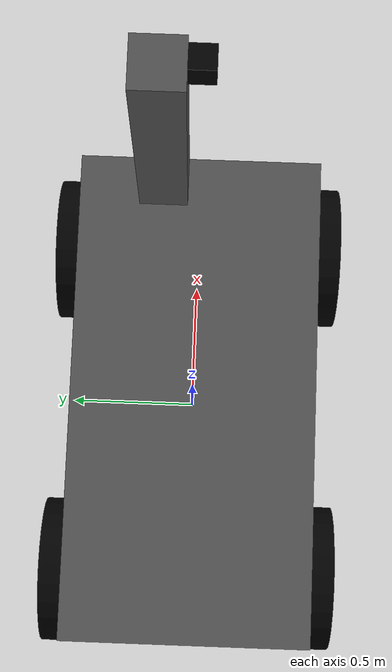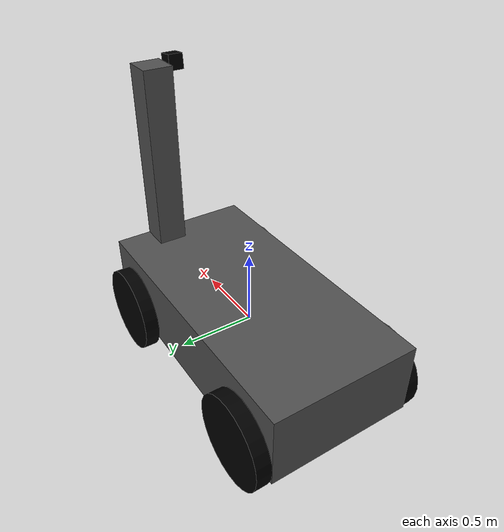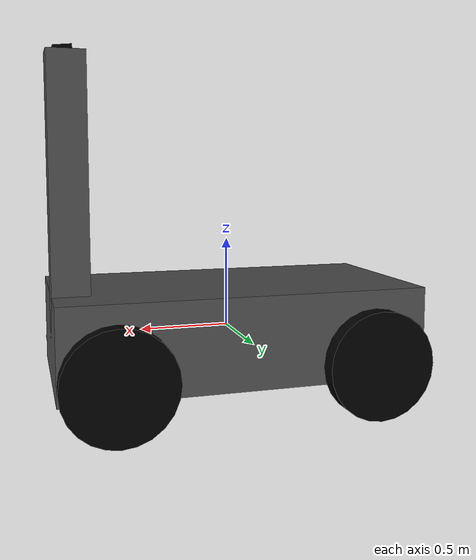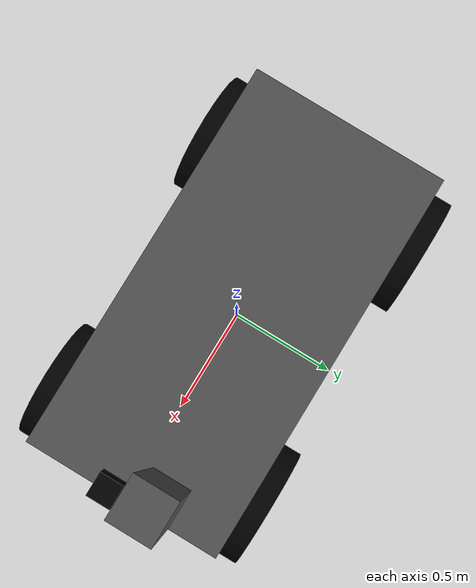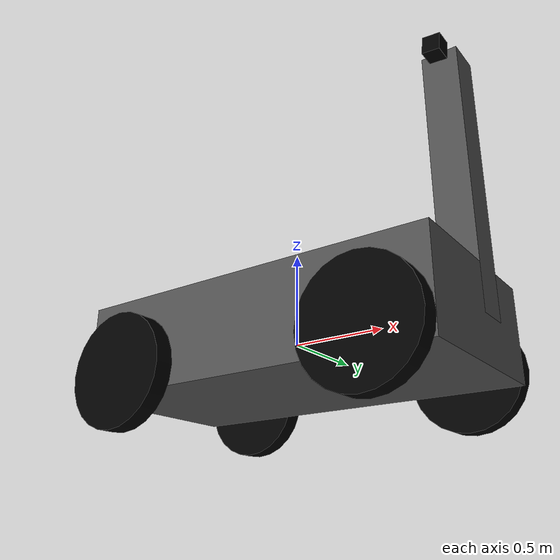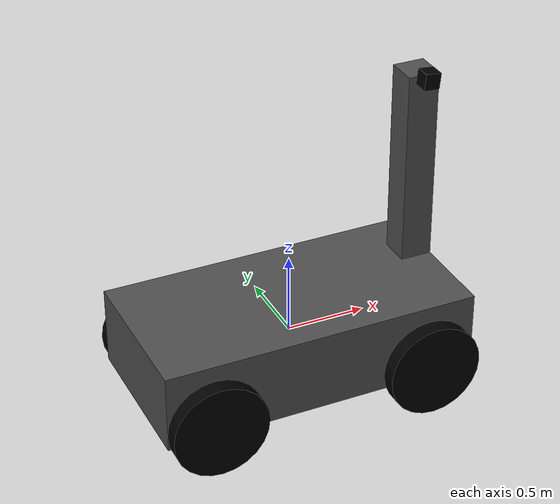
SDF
<sdf version='1.11'>
  <model name='ackermann_steering_vehicle'>
    <link name='body_link'>
      <inertial>
        <pose>1.7999999640000012e-08 1.4999999700000019e-09 2.2499999550000009e-08 0 0 0</pose>
        <mass>1000.0000199999999</mass>
        <inertia>
          <ixx>104.16669701666611</ixx>
          <ixy>-1.3499999730000011e-06</ixy>
          <ixz>-2.024999959500001e-05</ixz>
          <iyy>354.1667129916658</iyy>
          <iyz>-1.124999966250001e-06</iyz>
          <izz>416.6666850916663</izz>
        </inertia>
      </inertial>
      <collision name='body_link_collision'>
        <pose>0 0 0 0 0 0</pose>
        <geometry>
          <box>
            <size>2 1 0.5</size>
          </box>
        </geometry>
        <surface>
          <contact>
            <ode/>
          </contact>
          <friction>
            <ode>
              <mu>0.0001</mu>
              <mu2>0.0001</mu2>
            </ode>
          </friction>
        </surface>
      </collision>
      <collision name='body_link_fixed_joint_lump__camera_stick_link_collision_1'>
        <pose>0.90000000000000002 0.14999999999999999 0.75 0 0 0</pose>
        <geometry>
          <box>
            <size>0.20000000000000001 0.20000000000000001 1.5</size>
          </box>
        </geometry>
      </collision>
      <collision name='body_link_fixed_joint_lump__camera_link_collision_2'>
        <pose>0.90000000000000002 0 1.5 0 0.10000000000000001 0</pose>
        <geometry>
          <box>
            <size>0.10000000000000001 0.10000000000000001 0.10000000000000001</size>
          </box>
        </geometry>
      </collision>
      <visual name='body_link_visual'>
        <pose>0 0 0 0 0 0</pose>
        <geometry>
          <box>
            <size>2 1 0.5</size>
          </box>
        </geometry>
        <material>
          <diffuse>0.3125 0.3125 0.3125 1</diffuse>
          <ambient>0.3125 0.3125 0.3125 1</ambient>
        </material>
      </visual>
      <visual name='body_link_fixed_joint_lump__camera_stick_link_visual_1'>
        <pose>0.90000000000000002 0.14999999999999999 0.75 0 0 0</pose>
        <geometry>
          <box>
            <size>0.20000000000000001 0.20000000000000001 1.5</size>
          </box>
        </geometry>
        <material>
          <diffuse>0.3125 0.3125 0.3125 1</diffuse>
          <ambient>0.3125 0.3125 0.3125 1</ambient>
        </material>
      </visual>
      <visual name='body_link_fixed_joint_lump__camera_link_visual_2'>
        <pose>0.90000000000000002 0 1.5 0 0.10000000000000001 0</pose>
        <geometry>
          <box>
            <size>0.10000000000000001 0.10000000000000001 0.10000000000000001</size>
          </box>
        </geometry>
        <material>
          <diffuse>0 0 0 1</diffuse>
          <ambient>0 0 0 1</ambient>
        </material>
      </visual>
    </link>
    <joint name='front_left_steering_joint' type='revolute'>
      <pose relative_to='body_link'>0.69999999999999996 0.55000000000000004 -0.14999999999999999 0 0 0</pose>
      <parent>body_link</parent>
      <child>front_left_steering_link</child>
      <axis>
        <xyz>0 0 1</xyz>
        <limit>
          <lower>-0.61080000000000001</lower>
          <upper>0.61080000000000001</upper>
          <effort>1</effort>
          <velocity>1.5707960000000001</velocity>
        </limit>
        <dynamics>
          <damping>0.10000000000000001</damping>
          <friction>0.10000000000000001</friction>
          <spring_reference>0</spring_reference>
          <spring_stiffness>0</spring_stiffness>
        </dynamics>
      </axis>
    </joint>
    <link name='front_left_steering_link'>
      <pose relative_to='front_left_steering_joint'>0 0 0 0 0 0</pose>
      <inertial>
        <pose>0 0 0 1.5707949999999999 0 0</pose>
        <mass>0.01</mass>
        <inertia>
          <ixx>0</ixx>
          <ixy>0</ixy>
          <ixz>0</ixz>
          <iyy>0</iyy>
          <iyz>0</iyz>
          <izz>0</izz>
        </inertia>
      </inertial>
      <collision name='front_left_steering_link_collision'>
        <pose>0 0 0 1.5707949999999999 0 0</pose>
        <geometry>
          <cylinder>
            <length>0.001</length>
            <radius>0.01</radius>
          </cylinder>
        </geometry>
      </collision>
      <visual name='front_left_steering_link_visual'>
        <pose>0 0 0 1.5707949999999999 0 0</pose>
        <geometry>
          <cylinder>
            <length>0.001</length>
            <radius>0.01</radius>
          </cylinder>
        </geometry>
        <material>
          <diffuse>0 0 0 1</diffuse>
          <ambient>0 0 0 1</ambient>
        </material>
      </visual>
    </link>
    <joint name='front_left_wheel_joint' type='revolute'>
      <pose relative_to='front_left_steering_link'>0 0 0 0 0 0</pose>
      <parent>front_left_steering_link</parent>
      <child>front_left_wheel_link</child>
      <axis>
        <xyz>0 1 0</xyz>
        <limit>
          <effort>10</effort>
          <velocity>3.333333333333333</velocity>
          <lower>-inf</lower>
          <upper>inf</upper>
        </limit>
        <dynamics>
          <damping>0.10000000000000001</damping>
          <friction>0.10000000000000001</friction>
          <spring_reference>0</spring_reference>
          <spring_stiffness>0</spring_stiffness>
        </dynamics>
      </axis>
    </joint>
    <link name='front_left_wheel_link'>
      <pose relative_to='front_left_wheel_joint'>0 0 0 0 0 0</pose>
      <inertial>
        <pose>0 0 0 1.5707949999999999 0 0</pose>
        <mass>28.274333850000001</mass>
        <inertia>
          <ixx>0.65973445649999984</ixx>
          <ixy>0</ixy>
          <ixz>0</ixz>
          <iyy>0.65973445649999984</iyy>
          <iyz>0</iyz>
          <izz>1.27234502325</izz>
        </inertia>
      </inertial>
      <collision name='front_left_wheel_link_collision'>
        <pose>0 0 0 1.5707949999999999 0 0</pose>
        <geometry>
          <cylinder>
            <length>0.10000000000000001</length>
            <radius>0.29999999999999999</radius>
          </cylinder>
        </geometry>
        <surface>
          <contact>
            <ode/>
          </contact>
          <friction>
            <ode>
              <mu>100</mu>
              <mu2>100</mu2>
            </ode>
          </friction>
        </surface>
      </collision>
      <visual name='front_left_wheel_link_visual'>
        <pose>0 0 0 1.5707949999999999 0 0</pose>
        <geometry>
          <cylinder>
            <length>0.10000000000000001</length>
            <radius>0.29999999999999999</radius>
          </cylinder>
        </geometry>
        <material>
          <diffuse>0 0 0 1</diffuse>
          <ambient>0 0 0 1</ambient>
        </material>
      </visual>
    </link>
    <joint name='front_right_steering_joint' type='revolute'>
      <pose relative_to='body_link'>0.69999999999999996 -0.55000000000000004 -0.14999999999999999 0 0 0</pose>
      <parent>body_link</parent>
      <child>front_right_steering_link</child>
      <axis>
        <xyz>0 0 1</xyz>
        <limit>
          <lower>-0.61080000000000001</lower>
          <upper>0.61080000000000001</upper>
          <effort>1</effort>
          <velocity>1.5707960000000001</velocity>
        </limit>
        <dynamics>
          <damping>0.10000000000000001</damping>
          <friction>0.10000000000000001</friction>
          <spring_reference>0</spring_reference>
          <spring_stiffness>0</spring_stiffness>
        </dynamics>
      </axis>
    </joint>
    <link name='front_right_steering_link'>
      <pose relative_to='front_right_steering_joint'>0 0 0 0 0 0</pose>
      <inertial>
        <pose>0 0 0 1.5707949999999999 0 0</pose>
        <mass>0.01</mass>
        <inertia>
          <ixx>0</ixx>
          <ixy>0</ixy>
          <ixz>0</ixz>
          <iyy>0</iyy>
          <iyz>0</iyz>
          <izz>0</izz>
        </inertia>
      </inertial>
      <collision name='front_right_steering_link_collision'>
        <pose>0 0 0 1.5707949999999999 0 0</pose>
        <geometry>
          <cylinder>
            <length>0.001</length>
            <radius>0.01</radius>
          </cylinder>
        </geometry>
      </collision>
      <visual name='front_right_steering_link_visual'>
        <pose>0 0 0 1.5707949999999999 0 0</pose>
        <geometry>
          <cylinder>
            <length>0.001</length>
            <radius>0.01</radius>
          </cylinder>
        </geometry>
        <material>
          <diffuse>0 0 0 1</diffuse>
          <ambient>0 0 0 1</ambient>
        </material>
      </visual>
    </link>
    <joint name='front_right_wheel_joint' type='revolute'>
      <pose relative_to='front_right_steering_link'>0 0 0 0 0 0</pose>
      <parent>front_right_steering_link</parent>
      <child>front_right_wheel_link</child>
      <axis>
        <xyz>0 1 0</xyz>
        <limit>
          <effort>10</effort>
          <velocity>3.333333333333333</velocity>
          <lower>-inf</lower>
          <upper>inf</upper>
        </limit>
        <dynamics>
          <damping>0.10000000000000001</damping>
          <friction>0.10000000000000001</friction>
          <spring_reference>0</spring_reference>
          <spring_stiffness>0</spring_stiffness>
        </dynamics>
      </axis>
    </joint>
    <link name='front_right_wheel_link'>
      <pose relative_to='front_right_wheel_joint'>0 0 0 0 0 0</pose>
      <inertial>
        <pose>0 0 0 1.5707949999999999 0 0</pose>
        <mass>28.274333850000001</mass>
        <inertia>
          <ixx>0.65973445649999984</ixx>
          <ixy>0</ixy>
          <ixz>0</ixz>
          <iyy>0.65973445649999984</iyy>
          <iyz>0</iyz>
          <izz>1.27234502325</izz>
        </inertia>
      </inertial>
      <collision name='front_right_wheel_link_collision'>
        <pose>0 0 0 1.5707949999999999 0 0</pose>
        <geometry>
          <cylinder>
            <length>0.10000000000000001</length>
            <radius>0.29999999999999999</radius>
          </cylinder>
        </geometry>
        <surface>
          <contact>
            <ode/>
          </contact>
          <friction>
            <ode>
              <mu>100</mu>
              <mu2>100</mu2>
            </ode>
          </friction>
        </surface>
      </collision>
      <visual name='front_right_wheel_link_visual'>
        <pose>0 0 0 1.5707949999999999 0 0</pose>
        <geometry>
          <cylinder>
            <length>0.10000000000000001</length>
            <radius>0.29999999999999999</radius>
          </cylinder>
        </geometry>
        <material>
          <diffuse>0 0 0 1</diffuse>
          <ambient>0 0 0 1</ambient>
        </material>
      </visual>
    </link>
    <joint name='rear_left_wheel_joint' type='revolute'>
      <pose relative_to='body_link'>-0.69999999999999996 0.55000000000000004 -0.14999999999999999 0 0 0</pose>
      <parent>body_link</parent>
      <child>rear_left_wheel_link</child>
      <axis>
        <xyz>0 1 0</xyz>
        <limit>
          <effort>10</effort>
          <velocity>3.333333333333333</velocity>
          <lower>-inf</lower>
          <upper>inf</upper>
        </limit>
        <dynamics>
          <damping>0.10000000000000001</damping>
          <friction>0.10000000000000001</friction>
          <spring_reference>0</spring_reference>
          <spring_stiffness>0</spring_stiffness>
        </dynamics>
      </axis>
    </joint>
    <link name='rear_left_wheel_link'>
      <pose relative_to='rear_left_wheel_joint'>0 0 0 0 0 0</pose>
      <inertial>
        <pose>0 0 0 1.5707949999999999 0 0</pose>
        <mass>2</mass>
        <inertia>
          <ixx>0.65973445649999984</ixx>
          <ixy>0</ixy>
          <ixz>0</ixz>
          <iyy>0.65973445649999984</iyy>
          <iyz>0</iyz>
          <izz>1.27234502325</izz>
        </inertia>
      </inertial>
      <collision name='rear_left_wheel_link_collision'>
        <pose>0 0 0 1.5707949999999999 0 0</pose>
        <geometry>
          <cylinder>
            <length>0.10000000000000001</length>
            <radius>0.29999999999999999</radius>
          </cylinder>
        </geometry>
        <surface>
          <contact>
            <ode/>
          </contact>
          <friction>
            <ode>
              <mu>100</mu>
              <mu2>100</mu2>
            </ode>
          </friction>
        </surface>
      </collision>
      <visual name='rear_left_wheel_link_visual'>
        <pose>0 0 0 1.5707949999999999 0 0</pose>
        <geometry>
          <cylinder>
            <length>0.10000000000000001</length>
            <radius>0.29999999999999999</radius>
          </cylinder>
        </geometry>
        <material>
          <diffuse>0 0 0 1</diffuse>
          <ambient>0 0 0 1</ambient>
        </material>
      </visual>
    </link>
    <joint name='rear_right_wheel_joint' type='revolute'>
      <pose relative_to='body_link'>-0.69999999999999996 -0.55000000000000004 -0.14999999999999999 0 0 0</pose>
      <parent>body_link</parent>
      <child>rear_right_wheel_link</child>
      <axis>
        <xyz>0 1 0</xyz>
        <limit>
          <effort>10</effort>
          <velocity>3.333333333333333</velocity>
          <lower>-inf</lower>
          <upper>inf</upper>
        </limit>
        <dynamics>
          <damping>0.10000000000000001</damping>
          <friction>0.10000000000000001</friction>
          <spring_reference>0</spring_reference>
          <spring_stiffness>0</spring_stiffness>
        </dynamics>
      </axis>
    </joint>
    <link name='rear_right_wheel_link'>
      <pose relative_to='rear_right_wheel_joint'>0 0 0 0 0 0</pose>
      <inertial>
        <pose>0 0 0 1.5707949999999999 0 0</pose>
        <mass>2</mass>
        <inertia>
          <ixx>0.65973445649999984</ixx>
          <ixy>0</ixy>
          <ixz>0</ixz>
          <iyy>0.65973445649999984</iyy>
          <iyz>0</iyz>
          <izz>1.27234502325</izz>
        </inertia>
      </inertial>
      <collision name='rear_right_wheel_link_collision'>
        <pose>0 0 0 1.5707949999999999 0 0</pose>
        <geometry>
          <cylinder>
            <length>0.10000000000000001</length>
            <radius>0.29999999999999999</radius>
          </cylinder>
        </geometry>
        <surface>
          <contact>
            <ode/>
          </contact>
          <friction>
            <ode>
              <mu>100</mu>
              <mu2>100</mu2>
            </ode>
          </friction>
        </surface>
      </collision>
      <visual name='rear_right_wheel_link_visual'>
        <pose>0 0 0 1.5707949999999999 0 0</pose>
        <geometry>
          <cylinder>
            <length>0.10000000000000001</length>
            <radius>0.29999999999999999</radius>
          </cylinder>
        </geometry>
        <material>
          <diffuse>0 0 0 1</diffuse>
          <ambient>0 0 0 1</ambient>
        </material>
      </visual>
    </link>
    <plugin name='gz::sim::systems::TriggeredPublisher' filename='gz-sim-triggered-publisher-system'>
      <input topic='/keyboard/keypress' type='gz.msgs.Int32'>
        <match field='data'>16777235</match>
      </input>
      <output topic='/cmd_vel' type='gz.msgs.Twist'>linear: {x: 0.5}, angular: {z: 0.0}</output>
    </plugin>
    <plugin name='gz::sim::systems::TriggeredPublisher' filename='gz-sim-triggered-publisher-system'>
      <input topic='/keyboard/keypress' type='gz.msgs.Int32'>
        <match field='data'>16777237</match>
      </input>
      <output topic='/cmd_vel' type='gz.msgs.Twist'>linear: {x: -0.5}, angular: {z: 0}</output>
    </plugin>
    <plugin name='gz::sim::systems::TriggeredPublisher' filename='gz-sim-triggered-publisher-system'>
      <input topic='/keyboard/keypress' type='gz.msgs.Int32'>
        <match field='data'>16777234</match>
      </input>
      <output topic='/cmd_vel' type='gz.msgs.Twist'>linear: {x: 0}, angular: {z: 0.5}</output>
    </plugin>
    <plugin name='gz::sim::systems::TriggeredPublisher' filename='gz-sim-triggered-publisher-system'>
      <input topic='/keyboard/keypress' type='gz.msgs.Int32'>
        <match field='data'>16777236</match>
      </input>
      <output topic='/cmd_vel' type='gz.msgs.Twist'>linear: {x: 0}, angular: {z: -0.5}</output>
    </plugin>
    <plugin name='gz::sim::systems::Physics' filename='gz-sim-physics-system'/>
    <plugin name='gz::sim::systems::UserCommands' filename='gz-sim-user-commands-system'/>
    <plugin name='gz::sim::systems::SceneBroadcaster' filename='gz-sim-scene-broadcaster-system'/>
    <frame name='camera_joint' attached_to='camera_stick_link'>
      <pose>0 -0.14999999999999999 0.75 0 0.10000000000000001 0</pose>
    </frame>
    <frame name='camera_link' attached_to='camera_joint'>
      <pose>0 0 0 0 0 0</pose>
    </frame>
    <frame name='camera_stick_joint' attached_to='body_link'>
      <pose>0.90000000000000002 0.14999999999999999 0.75 0 0 0</pose>
    </frame>
    <frame name='camera_stick_link' attached_to='camera_stick_joint'>
      <pose>0 0 0 0 0 0</pose>
    </frame>
    <physics name='1ms' type='ignored'>
      <max_step_size>0.001</max_step_size>
      <real_time_factor>1.0</real_time_factor>
    </physics>
  </model>
</sdf>
